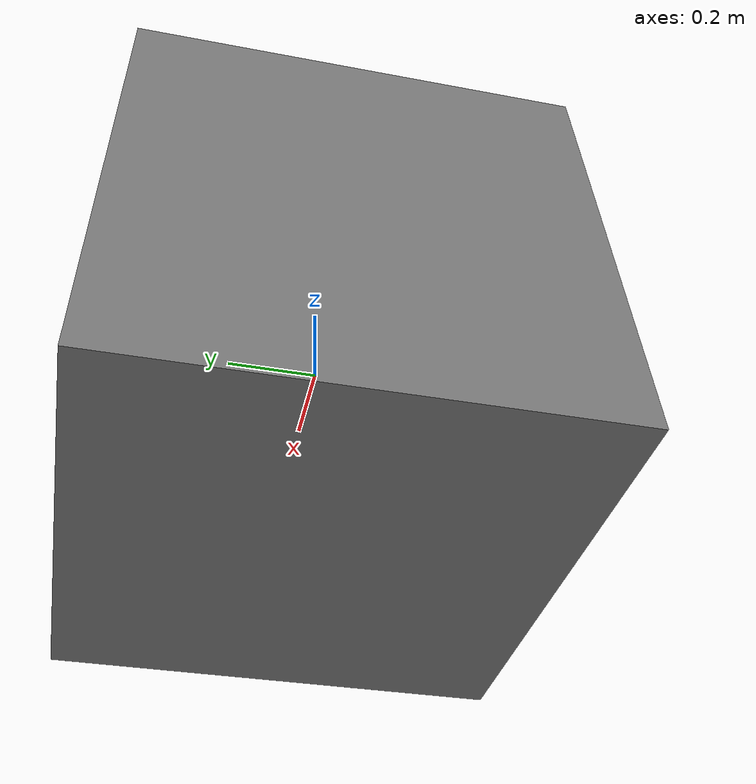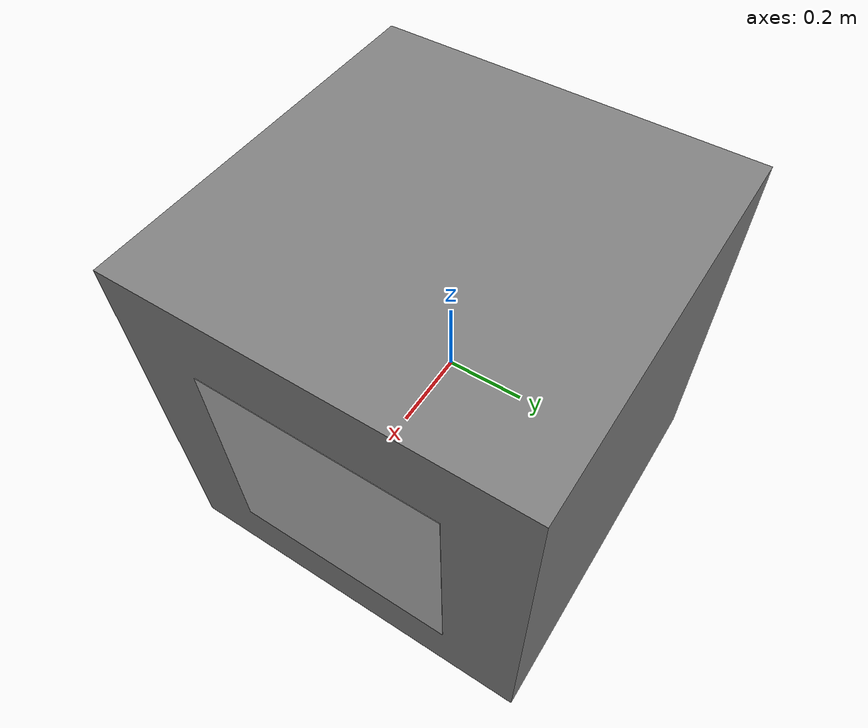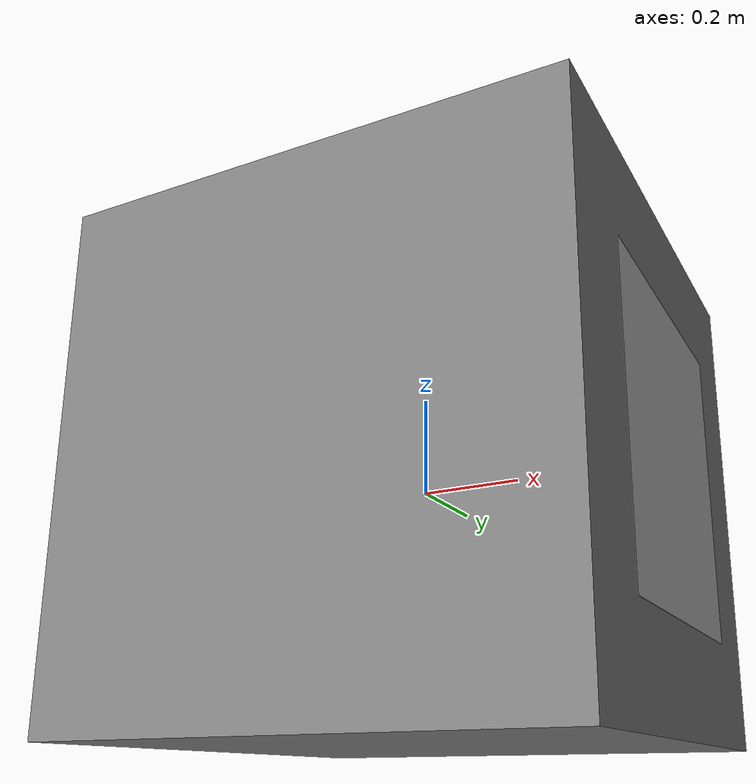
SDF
<?xml version="1.0"?>
<sdf version="1.9">
  <model name="aruco_box_1">
    <static>true</static>
    <link name="box_link">
      <inertial>
        <mass>1.0</mass>
        <inertia>
          <ixx>0.166667</ixx>
          <ixy>0</ixy>
          <ixz>0</ixz>
          <iyy>0.166667</iyy>
          <iyz>0</iyz>
          <izz>0.166667</izz>
        </inertia>
      </inertial>

      <!-- Main grey box visual -->
      <visual name="box_visual">
        <geometry>
          <box>
            <size>1.0 1.0 1.0</size>
          </box>
        </geometry>
        <material>
          <ambient>0.5 0.5 0.5 1</ambient>
          <diffuse>0.5 0.5 0.5 1</diffuse>
          <specular>0.1 0.1 0.1 1</specular>
        </material>
      </visual>

      <!-- ArUco marker on front face -->
      <visual name="aruco_marker_visual">
        <pose>0.505 0 0 0 0 0</pose>
        <geometry>
          <box>
            <size>0.001 0.6 0.6</size>
          </box>
        </geometry>
        <material>
          <pbr>
            <metal>
              <albedo_map>file:///home/cameron/robotics_2026/auto-nav-f2025/Testing_gazebo_ros2_bridge/ros_gz_project_template/ros_gz_example_description/models/aruco_box_1/materials/textures/marker_1.png</albedo_map>
            </metal>
          </pbr>
        </material>
      </visual>

      <!-- Collision -->
      <collision name="box_collision">
        <geometry>
          <box>
            <size>1.0 1.0 1.0</size>
          </box>
        </geometry>
      </collision>
    </link>
  </model>
</sdf>
